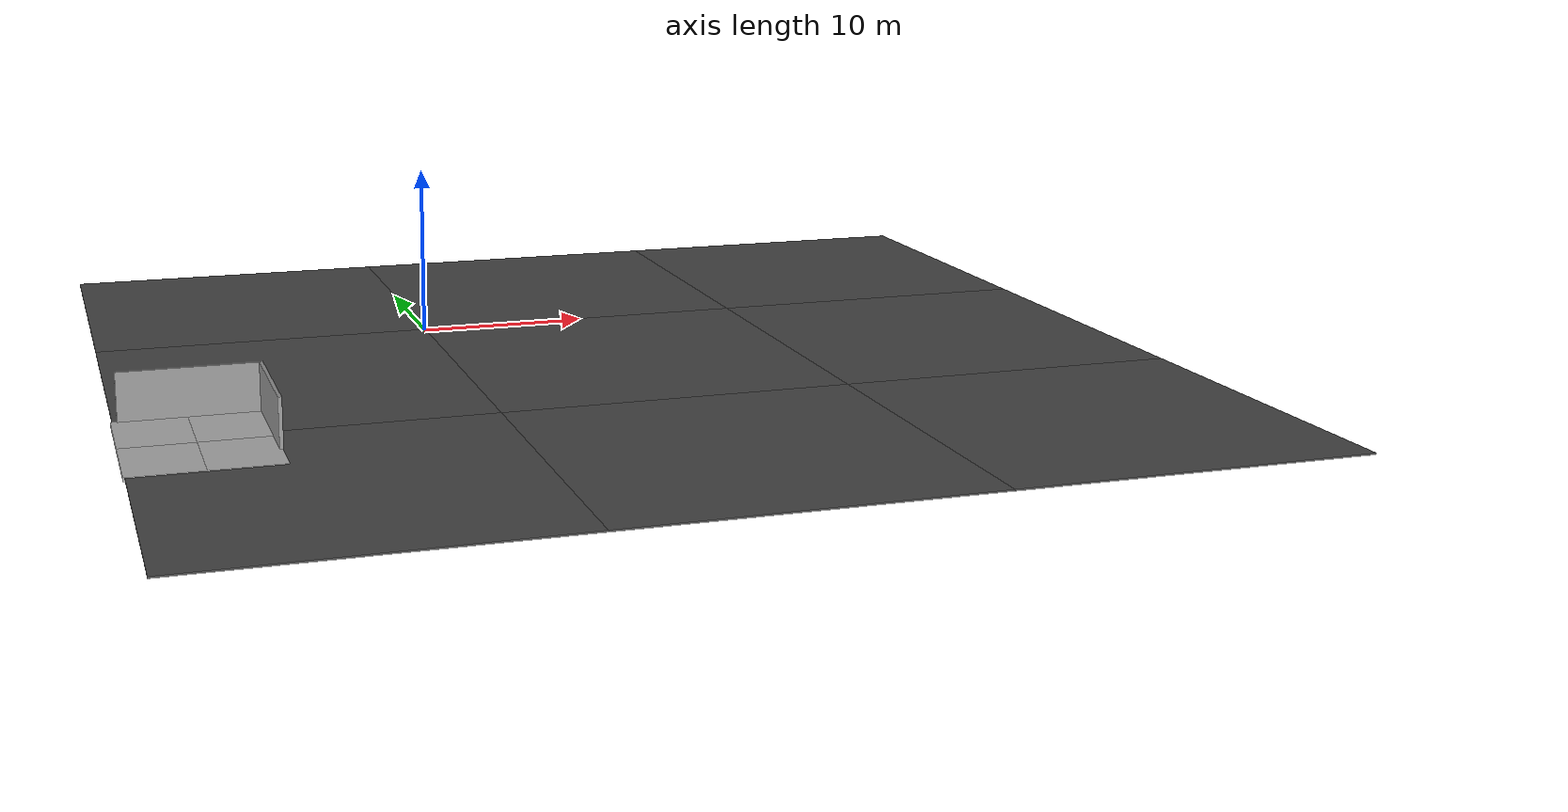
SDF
<sdf version="1.4">
 <world name="default">
  <light name="sun" type="directional">
   <pose>0 0 10 0 0 0</pose>
   <diffuse>0.8 0.8 0.8 1</diffuse>
   <specular>0.2 0.2 0.2 1</specular>
   <attenuation>
    <range>1000</range>
    <constant>0.9</constant>
    <linear>0.01</linear>
    <quadratic>0.001</quadratic>
   </attenuation>
   <direction>-0.5 0.1 -0.9</direction>
  </light>
  <physics type="ode">
   <ode>
    <solver><type>quick</type><iters>1000</iters><sor>1.3</sor></solver>
    <constraints>
     <cfm>0</cfm>
     <erp>0.2</erp>
     <contact_max_correcting_vel>100</contact_max_correcting_vel>
     <contact_surface_layer>0.001</contact_surface_layer>
    </constraints>
   </ode>
   <max_step_size>0.01</max_step_size>
   <real_time_factor>1</real_time_factor>
   <real_time_update_rate>100</real_time_update_rate>
   <gravity>0 0 -9.8</gravity>
  </physics>
  <scene><ambient>0.4 0.4 0.4 1</ambient><background>0.7 0.7 0.7 1</background><shadows>1</shadows></scene>
  <spherical_coordinates>
   <surface_model>EARTH_WGS84</surface_model>
   <latitude_deg>47.3667</latitude_deg>
   <longitude_deg>8.5500</longitude_deg>
   <elevation>500.0</elevation>
   <heading_deg>0</heading_deg>
  </spherical_coordinates>
  <model name="asphalt_plane">
   <static>1</static>
   <link name="link">
    <collision name="collision"><geometry><box><size>20 20 0.1</size></box></geometry></collision>
    <visual name="visual">
     <cast_shadows>0</cast_shadows>
     <geometry><box><size>20 20 0.1</size></box></geometry>
     <material>
      <script>
       <uri>model://../model_source/models/asphalt_plane/materials/scripts</uri>
       <uri>model://../model_source/models/asphalt_plane/materials/textures</uri>
       <name>vrc/asphalt</name>
      </script>
     </material>
    </visual>
    <velocity_decay><linear>0</linear><angular>0</angular></velocity_decay>
   </link>
   <pose>10 10 0 0 0 0</pose>
  </model>
  <model name="asphalt_plane_0">
   <static>1</static>
   <link name="link">
    <collision name="collision"><geometry><box><size>20 20 0.1</size></box></geometry></collision>
    <visual name="visual">
     <cast_shadows>0</cast_shadows>
     <geometry><box><size>20 20 0.1</size></box></geometry>
     <material>
      <script>
       <uri>model://../model_source/models/asphalt_plane/materials/scripts</uri>
       <uri>model://../model_source/models/asphalt_plane/materials/textures</uri>
       <name>vrc/asphalt</name>
      </script>
     </material>
    </visual>
    <velocity_decay><linear>0</linear><angular>0</angular></velocity_decay>
   </link>
   <pose>10 -10 0 0 0 0</pose>
  </model>
  <model name="asphalt_plane_1">
   <static>1</static>
   <link name="link">
    <collision name="collision"><geometry><box><size>20 20 0.1</size></box></geometry></collision>
    <visual name="visual">
     <cast_shadows>0</cast_shadows>
     <geometry><box><size>20 20 0.1</size></box></geometry>
     <material>
      <script>
       <uri>model://../model_source/models/asphalt_plane/materials/scripts</uri>
       <uri>model://../model_source/models/asphalt_plane/materials/textures</uri>
       <name>vrc/asphalt</name>
      </script>
     </material>
    </visual>
    <velocity_decay><linear>0</linear><angular>0</angular></velocity_decay>
   </link>
   <pose>-10 10 0 0 0 0</pose>
  </model>
  <model name="asphalt_plane_2">
   <static>1</static>
   <link name="link">
    <collision name="collision"><geometry><box><size>20 20 0.1</size></box></geometry></collision>
    <visual name="visual">
     <cast_shadows>0</cast_shadows>
     <geometry><box><size>20 20 0.1</size></box></geometry>
     <material>
      <script>
       <uri>model://../model_source/models/asphalt_plane/materials/scripts</uri>
       <uri>model://../model_source/models/asphalt_plane/materials/textures</uri>
       <name>vrc/asphalt</name>
      </script>
     </material>
    </visual>
    <velocity_decay><linear>0</linear><angular>0</angular></velocity_decay>
   </link>
   <pose>-10 -10 0 0 0 0</pose>
  </model>
  <model name="asphalt_plane_3">
   <static>1</static>
   <link name="link">
    <collision name="collision"><geometry><box><size>20 20 0.1</size></box></geometry></collision>
    <visual name="visual">
     <cast_shadows>0</cast_shadows>
     <geometry><box><size>20 20 0.1</size></box></geometry>
     <material>
      <script>
       <uri>model://../model_source/models/asphalt_plane/materials/scripts</uri>
       <uri>model://../model_source/models/asphalt_plane/materials/textures</uri>
       <name>vrc/asphalt</name>
      </script>
     </material>
    </visual>
    <velocity_decay><linear>0</linear><angular>0</angular></velocity_decay>
   </link>
   <pose>-10 -30 0 0 0 0</pose>
  </model>
  <model name="asphalt_plane_4">
   <static>1</static>
   <link name="link">
    <collision name="collision"><geometry><box><size>20 20 0.1</size></box></geometry></collision>
    <visual name="visual">
     <cast_shadows>0</cast_shadows>
     <geometry><box><size>20 20 0.1</size></box></geometry>
     <material>
      <script>
       <uri>model://../model_source/models/asphalt_plane/materials/scripts</uri>
       <uri>model://../model_source/models/asphalt_plane/materials/textures</uri>
       <name>vrc/asphalt</name>
      </script>
     </material>
    </visual>
    <velocity_decay><linear>0</linear><angular>0</angular></velocity_decay>
   </link>
   <pose>10 -30 0 0 0 0</pose>
  </model>
  <model name="asphalt_plane_5">
   <static>1</static>
   <link name="link">
    <collision name="collision"><geometry><box><size>20 20 0.1</size></box></geometry></collision>
    <visual name="visual">
     <cast_shadows>0</cast_shadows>
     <geometry><box><size>20 20 0.1</size></box></geometry>
     <material>
      <script>
       <uri>model://../model_source/models/asphalt_plane/materials/scripts</uri>
       <uri>model://../model_source/models/asphalt_plane/materials/textures</uri>
       <name>vrc/asphalt</name>
      </script>
     </material>
    </visual>
    <velocity_decay><linear>0</linear><angular>0</angular></velocity_decay>
   </link>
   <pose>30 -30 0 0 0 0</pose>
  </model>
  <model name="asphalt_plane_6">
   <static>1</static>
   <link name="link">
    <collision name="collision"><geometry><box><size>20 20 0.1</size></box></geometry></collision>
    <visual name="visual">
     <cast_shadows>0</cast_shadows>
     <geometry><box><size>20 20 0.1</size></box></geometry>
     <material>
      <script>
       <uri>model://../model_source/models/asphalt_plane/materials/scripts</uri>
       <uri>model://../model_source/models/asphalt_plane/materials/textures</uri>
       <name>vrc/asphalt</name>
      </script>
     </material>
    </visual>
    <velocity_decay><linear>0</linear><angular>0</angular></velocity_decay>
   </link>
   <pose>30 10 0 0 0 0</pose>
  </model>
  <model name="asphalt_plane_7">
   <static>1</static>
   <link name="link">
    <collision name="collision"><geometry><box><size>20 20 0.1</size></box></geometry></collision>
    <visual name="visual">
     <cast_shadows>0</cast_shadows>
     <geometry><box><size>20 20 0.1</size></box></geometry>
     <material>
      <script>
       <uri>model://../model_source/models/asphalt_plane/materials/scripts</uri>
       <uri>model://../model_source/models/asphalt_plane/materials/textures</uri>
       <name>vrc/asphalt</name>
      </script>
     </material>
    </visual>
    <velocity_decay><linear>0</linear><angular>0</angular></velocity_decay>
   </link>
   <pose>30 -10 0 0 0 0</pose>
  </model>
  <model name="mud_box">
   <static>1</static>
   <link name="link">
    <collision name="collision"><geometry><box><size>8 10 0.2</size></box></geometry></collision>
    <visual name="visual_1">
     <pose>-2 2.5 0 0 0 0</pose>
     <cast_shadows>0</cast_shadows>
     <geometry><box><size>4 5 0.2</size></box></geometry>
     <material>
      <script>
       <uri>model://../model_source/models/mud_box/materials/scripts</uri>
       <uri>model://../model_source/models/mud_box/materials/textures</uri>
       <name>vrc/mud</name>
      </script>
     </material>
    </visual>
    <visual name="visual_2">
     <pose>2 2.5 0 0 0 0</pose>
     <cast_shadows>0</cast_shadows>
     <geometry><box><size>4 5 0.2</size></box></geometry>
     <material>
      <script>
       <uri>model://../model_source/models/mud_box/materials/scripts</uri>
       <uri>model://../model_source/models/mud_box/materials/textures</uri>
       <name>vrc/mud</name>
      </script>
     </material>
    </visual>
    <visual name="visual_3">
     <pose>2 -2.5 0 0 0 0</pose>
     <cast_shadows>0</cast_shadows>
     <geometry><box><size>4 5 0.2</size></box></geometry>
     <material>
      <script>
       <uri>model://../model_source/models/mud_box/materials/scripts</uri>
       <uri>model://../model_source/models/mud_box/materials/textures</uri>
       <name>vrc/mud</name>
      </script>
     </material>
    </visual>
    <visual name="visual_4">
     <pose>-2 -2.5 0 0 0 0</pose>
     <cast_shadows>0</cast_shadows>
     <geometry><box><size>4 5 0.2</size></box></geometry>
     <material>
      <script>
       <uri>model://../model_source/models/mud_box/materials/scripts</uri>
       <uri>model://../model_source/models/mud_box/materials/textures</uri>
       <name>vrc/mud</name>
      </script>
     </material>
    </visual>
    <velocity_decay><linear>0</linear><angular>0</angular></velocity_decay>
   </link>
   <pose>-16.1 -21 0 0 0 0</pose>
  </model>
  <model name="grey_wall">
   <static>1</static>
   <link name="link">
    <pose>0 0 1.4 0 0 0</pose>
    <collision name="collision"><geometry><box><size>7.5 0.2 2.8</size></box></geometry></collision>
    <visual name="visual">
     <cast_shadows>0</cast_shadows>
     <geometry><box><size>7.5 0.2 2.8</size></box></geometry>
     <material>
      <script>
       <uri>model://../model_source/models/grey_wall/materials/scripts</uri>
       <uri>model://../model_source/models/grey_wall/materials/textures</uri>
       <name>vrc/grey_wall</name>
      </script>
     </material>
    </visual>
    <velocity_decay><linear>0</linear><angular>0</angular></velocity_decay>
   </link>
   <pose>-16 -16 0 0 0 0</pose>
  </model>
  <model name="grey_wall_0">
   <static>1</static>
   <link name="link">
    <pose>0 0 1.4 0 0 0</pose>
    <collision name="collision"><geometry><box><size>7.5 0.2 2.8</size></box></geometry></collision>
    <visual name="visual">
     <cast_shadows>0</cast_shadows>
     <geometry><box><size>7.5 0.2 2.8</size></box></geometry>
     <material>
      <script>
       <uri>model://../model_source/models/grey_wall/materials/scripts</uri>
       <uri>model://../model_source/models/grey_wall/materials/textures</uri>
       <name>vrc/grey_wall</name>
      </script>
     </material>
    </visual>
    <velocity_decay><linear>0</linear><angular>0</angular></velocity_decay>
   </link>
   <pose>-12.15 -19.7 0 0 0 -1.57378</pose>
  </model>
 </world>
</sdf>
